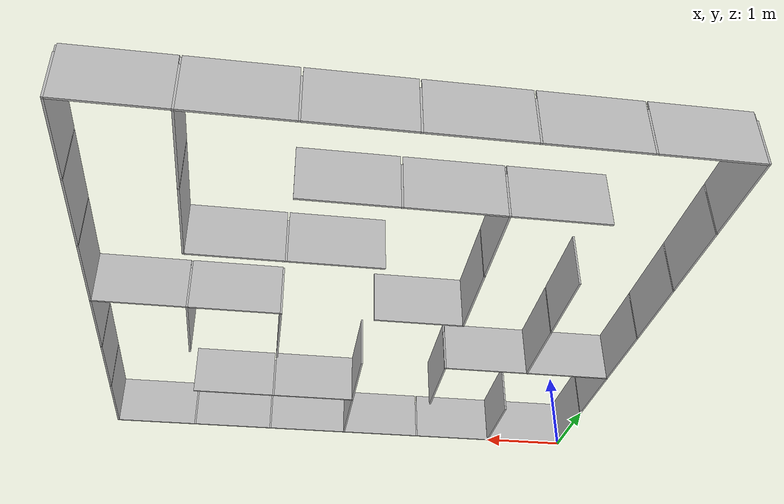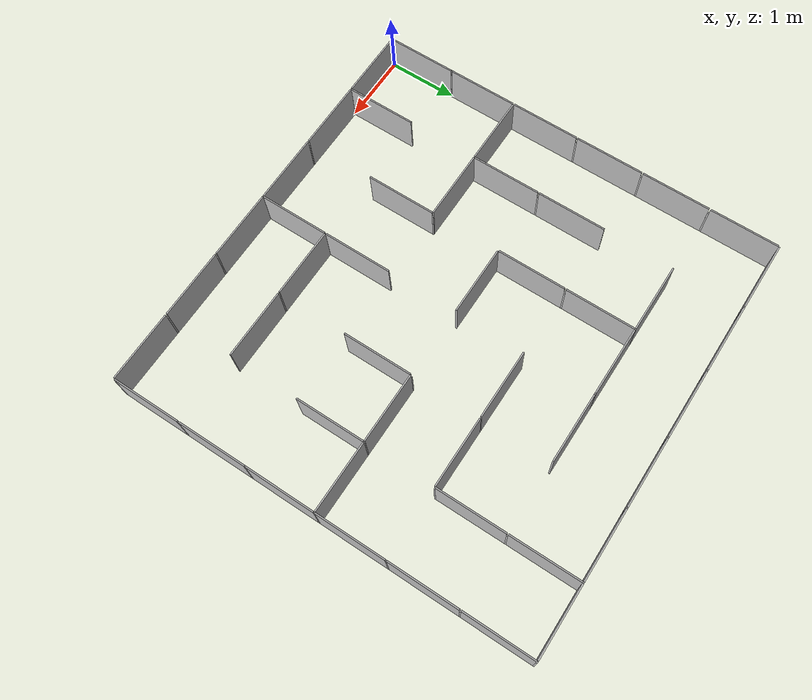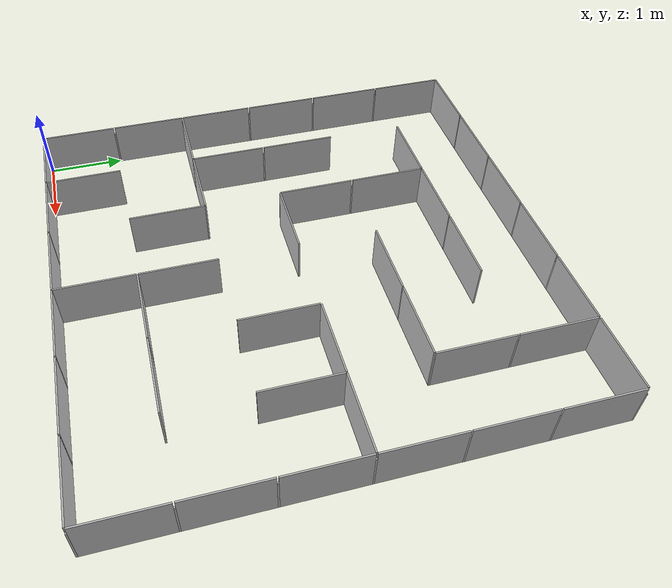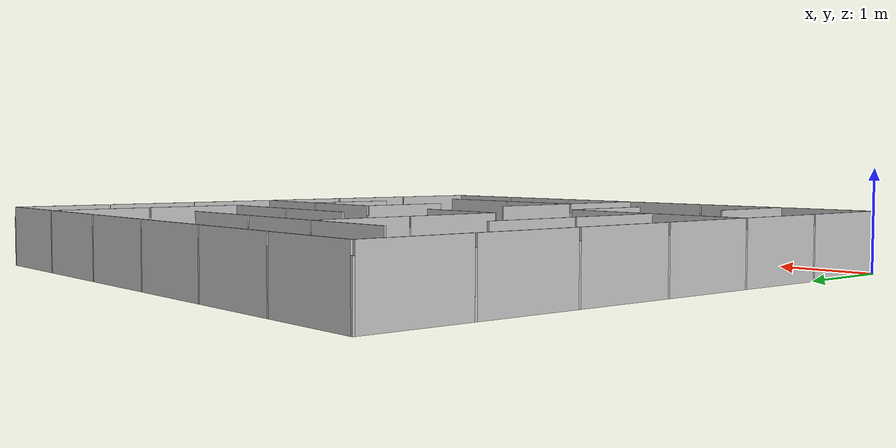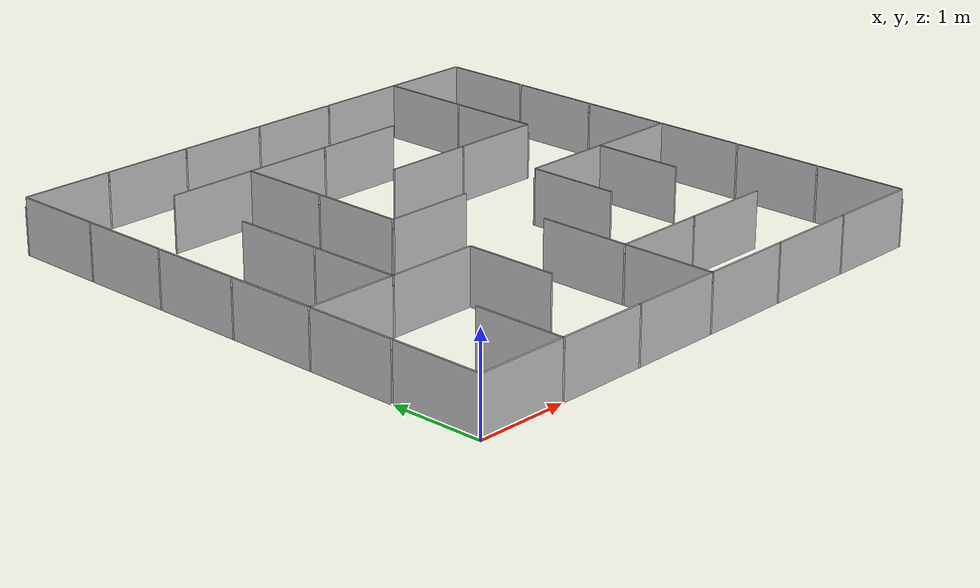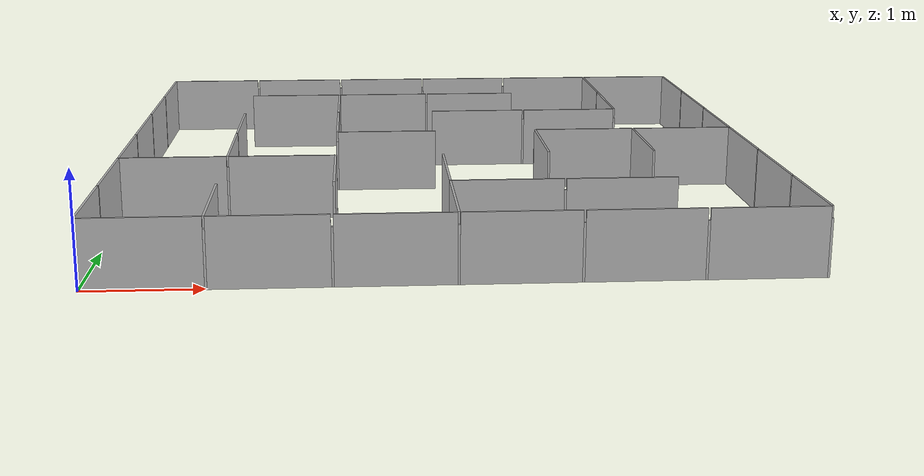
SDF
<?xml version="1.0"?>
<sdf version="1.5">
    <model name="maze_4_metal_6x6">

<!-- outer wall along x axis (y:0) -->
        <include>
            <name>metal_plate_0_0_b</name>
            <uri>model://metal_plate</uri>
            <pose>0 0 0 0 0 1.571</pose>
        </include>
        <include>
            <name>metal_joint_0_0_b</name>
            <uri>model://metal_joint</uri>
            <pose>0 0 0 0 0 0</pose>
        </include>

        <include>
            <name>metal_plate_1_0_b</name>
            <uri>model://metal_plate</uri>
            <pose>1 0 0 0 0 1.571</pose>
        </include>
        <include>
            <name>metal_joint_1_0_b</name>
            <uri>model://metal_joint</uri>
            <pose>1 0 0 0 0 0</pose>
        </include>

        <include>
            <name>metal_plate_2_0_b</name>
            <uri>model://metal_plate</uri>
            <pose>2 0 0 0 0 1.571</pose>
        </include>
        <include>
            <name>metal_joint_2_0_b</name>
            <uri>model://metal_joint</uri>
            <pose>2 0 0 0 0 0</pose>
        </include>

        <include>
            <name>metal_plate_3_0_b</name>
            <uri>model://metal_plate</uri>
            <pose>3 0 0 0 0 1.571</pose>
        </include>
        <include>
            <name>metal_joint_3_0_b</name>
            <uri>model://metal_joint</uri>
            <pose>3 0 0 0 0 0</pose>
        </include>

        <include>
            <name>metal_plate_4_0_b</name>
            <uri>model://metal_plate</uri>
            <pose>4 0 0 0 0 1.571</pose>
        </include>
        <include>
            <name>metal_joint_4_0_b</name>
            <uri>model://metal_joint</uri>
            <pose>4 0 0 0 0 0</pose>
        </include>

        <include>
            <name>metal_plate_5_0_b</name>
            <uri>model://metal_plate</uri>
            <pose>5 0 0 0 0 1.571</pose>
        </include>
        <include>
            <name>metal_joint_5_0_b</name>
            <uri>model://metal_joint</uri>
            <pose>5 0 0 0 0 0</pose>
        </include>

<!-- outer wall along x axis (y:6) -->
        <include>
            <name>metal_plate_0_6_b</name>
            <uri>model://metal_plate</uri>
            <pose>0 6 0 0 0 1.571</pose>
        </include>
        <include>
            <name>metal_joint_0_6_b</name>
            <uri>model://metal_joint</uri>
            <pose>0 6 0 0 0 0</pose>
        </include>

        <include>
            <name>metal_plate_1_6_b</name>
            <uri>model://metal_plate</uri>
            <pose>1 6 0 0 0 1.571</pose>
        </include>
        <include>
            <name>metal_joint_1_6_b</name>
            <uri>model://metal_joint</uri>
            <pose>1 6 0 0 0 0</pose>
        </include>

        <include>
            <name>metal_plate_2_6_b</name>
            <uri>model://metal_plate</uri>
            <pose>2 6 0 0 0 1.571</pose>
        </include>
        <include>
            <name>metal_joint_2_6_b</name>
            <uri>model://metal_joint</uri>
            <pose>2 6 0 0 0 0</pose>
        </include>

        <include>
            <name>metal_plate_3_6_b</name>
            <uri>model://metal_plate</uri>
            <pose>3 6 0 0 0 1.571</pose>
        </include>
        <include>
            <name>metal_joint_3_6_b</name>
            <uri>model://metal_joint</uri>
            <pose>3 6 0 0 0 0</pose>
        </include>

        <include>
            <name>metal_plate_4_6_b</name>
            <uri>model://metal_plate</uri>
            <pose>4 6 0 0 0 1.571</pose>
        </include>
        <include>
            <name>metal_joint_4_6_b</name>
            <uri>model://metal_joint</uri>
            <pose>4 6 0 0 0 0</pose>
        </include>

        <include>
            <name>metal_plate_5_6_b</name>
            <uri>model://metal_plate</uri>
            <pose>5 6 0 0 0 1.571</pose>
        </include>
        <include>
            <name>metal_joint_5_6_b</name>
            <uri>model://metal_joint</uri>
            <pose>5 6 0 0 0 0</pose>
        </include>

<!-- outer wall along y axis -->
        <include>
            <name>metal_plate_0_0_a</name>
            <uri>model://metal_plate</uri>
            <pose>0 0 0 0 0 3.14159</pose>
        </include>
        <include>
            <name>metal_joint_6_6_a</name>
            <uri>model://metal_joint</uri>
            <pose>6 6 0 0 0 0</pose>
        </include>

        <include>
            <name>metal_plate_0_1_a</name>
            <uri>model://metal_plate</uri>
            <pose>0 1 0 0 0 3.14159</pose>
        </include>
        <include>
            <name>metal_joint_0_1_a</name>
            <uri>model://metal_joint</uri>
            <pose>0 1 0 0 0 0</pose>
        </include>

        <include>
            <name>metal_plate_0_2_a</name>
            <uri>model://metal_plate</uri>
            <pose>0 2 0 0 0 3.14159</pose>
        </include>
        <include>
            <name>metal_joint_0_2_a</name>
            <uri>model://metal_joint</uri>
            <pose>0 2 0 0 0 0</pose>
        </include>

        <include>
            <name>metal_plate_0_3_a</name>
            <uri>model://metal_plate</uri>
            <pose>0 3 0 0 0 3.14159</pose>
        </include>
        <include>
            <name>metal_joint_0_3_a</name>
            <uri>model://metal_joint</uri>
            <pose>0 3 0 0 0 0</pose>
        </include>

        <include>
            <name>metal_plate_0_4_a</name>
            <uri>model://metal_plate</uri>
            <pose>0 4 0 0 0 3.14159</pose>
        </include>
        <include>
            <name>metal_joint_0_4_a</name>
            <uri>model://metal_joint</uri>
            <pose>0 4 0 0 0 0</pose>
        </include>

        <include>
            <name>metal_plate_0_5_a</name>
            <uri>model://metal_plate</uri>
            <pose>0 5 0 0 0 3.14159</pose>
        </include>
        <include>
            <name>metal_joint_0_5_a</name>
            <uri>model://metal_joint</uri>
            <pose>0 5 0 0 0 0</pose>
        </include>

<!-- outer wall along y axis (x:6)-->
        <include>
            <name>metal_plate_6_0_a</name>
            <uri>model://metal_plate</uri>
            <pose>6 0 0 0 0 3.14159</pose>
        </include>
        <include>
            <name>metal_joint_6_0_a</name>
            <uri>model://metal_joint</uri>
            <pose>6 0 0 0 0 0</pose>
        </include>

        <include>
            <name>metal_plate_6_1_a</name>
            <uri>model://metal_plate</uri>
            <pose>6 1 0 0 0 3.14159</pose>
        </include>
        <include>
            <name>metal_joint_6_1_a</name>
            <uri>model://metal_joint</uri>
            <pose>6 1 0 0 0 0</pose>
        </include>

        <include>
            <name>metal_plate_6_2_a</name>
            <uri>model://metal_plate</uri>
            <pose>6 2 0 0 0 3.14159</pose>
        </include>
        <include>
            <name>metal_joint_6_2_a</name>
            <uri>model://metal_joint</uri>
            <pose>6 2 0 0 0 0</pose>
        </include>

        <include>
            <name>metal_plate_6_3_a</name>
            <uri>model://metal_plate</uri>
            <pose>6 3 0 0 0 3.14159</pose>
        </include>
        <include>
            <name>metal_joint_6_3_a</name>
            <uri>model://metal_joint</uri>
            <pose>6 3 0 0 0 0</pose>
        </include>

        <include>
            <name>metal_plate_6_4_a</name>
            <uri>model://metal_plate</uri>
            <pose>6 4 0 0 0 3.14159</pose>
        </include>
        <include>
            <name>metal_joint_6_4_a</name>
            <uri>model://metal_joint</uri>
            <pose>6 4 0 0 0 0</pose>
        </include>

        <include>
            <name>metal_plate_6_5_a</name>
            <uri>model://metal_plate</uri>
            <pose>6 5 0 0 0 3.14159</pose>
        </include>
       <include>
            <name>metal_joint_6_5_a</name>
            <uri>model://metal_joint</uri>
            <pose>6 5 0 0 0 0</pose>
        </include>

<!-- interior panels -->

<!-- row 1 -->
        <include>
            <name>metal_plate_4_1_c</name>
            <uri>model://metal_plate</uri>
            <pose>4 1 0 0 0 -1.5708</pose>
        </include>

        <include>
            <name>metal_plate_5_1_c</name>
            <uri>model://metal_plate</uri>
            <pose>5 1 0 0 0 -1.5708</pose>
        </include>

<!-- row 2 -->
        <include>
            <name>metal_plate_1_2_c</name>
            <uri>model://metal_plate</uri>
            <pose>1 2 0 0 0 -1.5708</pose>
        </include>

        <include>
            <name>metal_plate_2_2_c</name>
            <uri>model://metal_plate</uri>
            <pose>2 2 0 0 0 -1.5708</pose>
        </include>

<!-- row 3 -->
        <include>
            <name>metal_plate_3_3_c</name>
            <uri>model://metal_plate</uri>
            <pose>3 3 0 0 0 -1.5708</pose>
        </include>

        <include>
            <name>metal_plate_5_3_c</name>
            <uri>model://metal_plate</uri>
            <pose>5 3 0 0 0 -1.5708</pose>
        </include>

        <include>
            <name>metal_plate_6_3_c</name>
            <uri>model://metal_plate</uri>
            <pose>6 3 0 0 0 -1.5708</pose>
        </include>

<!-- row 4 -->
        <include>
            <name>metal_plate_4_4_c</name>
            <uri>model://metal_plate</uri>
            <pose>4 4 0 0 0 -1.5708</pose>
        </include>

        <include>
            <name>metal_plate_5_4_c</name>
            <uri>model://metal_plate</uri>
            <pose>5 4 0 0 0 -1.5708</pose>
        </include>

<!-- row 5 -->
        <include>
            <name>metal_plate_2_5_c</name>
            <uri>model://metal_plate</uri>
            <pose>2 5 0 0 0 -1.5708</pose>
        </include>

        <include>
            <name>metal_plate_3_5_c</name>
            <uri>model://metal_plate</uri>
            <pose>3 5 0 0 0 -1.5708</pose>
        </include>

        <include>
            <name>metal_plate_4_5_c</name>
            <uri>model://metal_plate</uri>
            <pose>4 5 0 0 0 -1.5708</pose>
        </include>

<!-- column 1 -->
        <include>
            <name>metal_plate_1_1_a</name>
            <uri>model://metal_plate</uri>
            <pose>1 1 0 0 0 0</pose>
        </include>

        <include>
            <name>metal_plate_1_3_a</name>
            <uri>model://metal_plate</uri>
            <pose>1 3 0 0 0 0</pose>
        </include>

        <include>
            <name>metal_plate_1_4_a</name>
            <uri>model://metal_plate</uri>
            <pose>1 4 0 0 0 0</pose>
        </include>

<!-- column 2 -->
        <include>
            <name>metal_plate_2_2_a</name>
            <uri>model://metal_plate</uri>
            <pose>2 2 0 0 0 0</pose>
        </include>

        <include>
            <name>metal_plate_2_4_a</name>
            <uri>model://metal_plate</uri>
            <pose>2 4 0 0 0 0</pose>
        </include>

        <include>
            <name>metal_plate_2_5_a</name>
            <uri>model://metal_plate</uri>
            <pose>2 5 0 0 0 0</pose>
        </include>

<!-- column 3 -->
        <include>
            <name>metal_plate_3_1_a</name>
            <uri>model://metal_plate</uri>
            <pose>3 1 0 0 0 0</pose>
        </include>

        <include>
            <name>metal_plate_3_2_a</name>
            <uri>model://metal_plate</uri>
            <pose>3 2 0 0 0 0</pose>
        </include>

<!-- column 4 -->
        <include>
            <name>metal_plate_4_3_a</name>
            <uri>model://metal_plate</uri>
            <pose>4 3 0 0 0 0</pose>
        </include>

<!-- column 5 -->
        <include>
            <name>metal_plate_5_3_a</name>
            <uri>model://metal_plate</uri>
            <pose>5 3 0 0 0 0</pose>
        </include>

        <include>
            <name>metal_plate_5_5_a</name>
            <uri>model://metal_plate</uri>
            <pose>5 5 0 0 0 0</pose>
        </include>

        <include>
            <name>metal_plate_5_6_a</name>
            <uri>model://metal_plate</uri>
            <pose>5 6 0 0 0 0</pose>
        </include>

<!-- interior panel joints -->

<!-- row 1 -->
        <include>
            <name>metal_joint_3_1</name>
            <uri>model://metal_joint</uri>
            <pose>3 1 0 0 0 0</pose>
        </include>

        <include>
            <name>metal_joint_4_1</name>
            <uri>model://metal_joint</uri>
            <pose>4 1 0 0 0 0</pose>
        </include>

<!-- row 2 -->
        <include>
            <name>metal_joint_1_2</name>
            <uri>model://metal_joint</uri>
            <pose>1 2 0 0 0 0</pose>
        </include>

        <include>
            <name>metal_joint_2_2</name>
            <uri>model://metal_joint</uri>
            <pose>2 2 0 0 0 0</pose>
        </include>

<!-- row 3 -->
        <include>
            <name>metal_joint_1_3</name>
            <uri>model://metal_joint</uri>
            <pose>1 3 0 0 0 0</pose>
        </include>

        <include>
            <name>metal_joint_2_3</name>
            <uri>model://metal_joint</uri>
            <pose>2 3 0 0 0 0</pose>
        </include>

        <include>
            <name>metal_joint_4_3</name>
            <uri>model://metal_joint</uri>
            <pose>4 3 0 0 0 0</pose>
        </include>

        <include>
            <name>metal_joint_5_3</name>
            <uri>model://metal_joint</uri>
            <pose>5 3 0 0 0 0</pose>
        </include>

<!-- row 4 -->
        <include>
            <name>metal_joint_2_4</name>
            <uri>model://metal_joint</uri>
            <pose>2 4 0 0 0 0</pose>
        </include>

        <include>
            <name>metal_joint_4_4</name>
            <uri>model://metal_joint</uri>
            <pose>4 4 0 0 0 0</pose>
        </include>

        <include>
            <name>metal_joint_5_4</name>
            <uri>model://metal_joint</uri>
            <pose>5 4 0 0 0 0</pose>
        </include>

<!-- row 5 -->
        <include>
            <name>metal_joint_2_5</name>
            <uri>model://metal_joint</uri>
            <pose>2 5 0 0 0 0</pose>
        </include>

        <include>
            <name>metal_joint_3_5</name>
            <uri>model://metal_joint</uri>
            <pose>3 5 0 0 0 0</pose>
        </include>

        <include>
            <name>metal_joint_5_5</name>
            <uri>model://metal_joint</uri>
            <pose>5 5 0 0 0 0</pose>
        </include>

    </model>
</sdf>

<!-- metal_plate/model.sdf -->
<sdf version="1.4">
    <model name="metal_plate">
        <static>true</static>

        <link name="main">
            <pose>0 0 0 0 0 0</pose>
            <collision name="collision">
                <pose>0.0 -0.5 0.3 -1.571 0 -1.571</pose>
                <geometry>
                    <box>
                        <size>0.98 0.6 0.02</size>
                    </box>
                </geometry>
            </collision>

            <visual name="visual">
                <!-- offset origin to align to the center of one grid edge and rotate to vertical position -->
                <pose>0.01 -0.01 0 0 -1.571 0</pose>
                <geometry>
                    <mesh>
                        <scale>1.0 1.0 1.0</scale>
                        <!-- measures 0.98 x 0.6 x 0.02 mt, origin is at one corner of the plate -->
                        <uri>model://metal_plate/meshes/metal_plate.dae</uri>
                    </mesh>
                </geometry>
            </visual>
        </link>

    </model>
</sdf>

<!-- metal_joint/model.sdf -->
<sdf version="1.5">
  <model name="metal_joint">
    <static>true</static>
    <link name="link">
     <pose frame=''>0 0 0.25 0 -0 0</pose>
      <collision name="metal_joint_01">
        <pose>0 0 0 0 0 0</pose>
        <geometry>
          <box>
            <size>0.02 0.02 0.5</size>
          </box>
        </geometry>
      </collision>
       <visual name='visual_metal_joint_0'>
        <pose>0 0 0 0 0 0</pose>
        <geometry>
          <box>
            <size>0.02 0.02 0.5</size>
          </box>
        </geometry>
        <material>
          <script>
            <uri>model://metal_joint/materials/scripts</uri>
            <uri>model://metal_joint/materials/textures</uri>
            <name>metal_joint</name>
          </script>
        </material>
      </visual>
    </link>
  </model>
</sdf>
